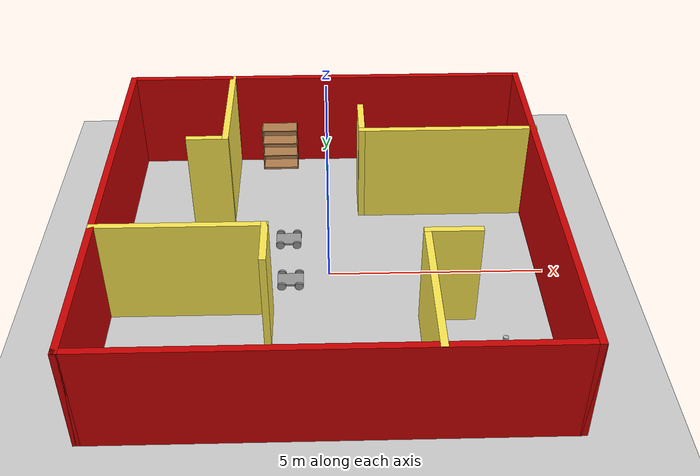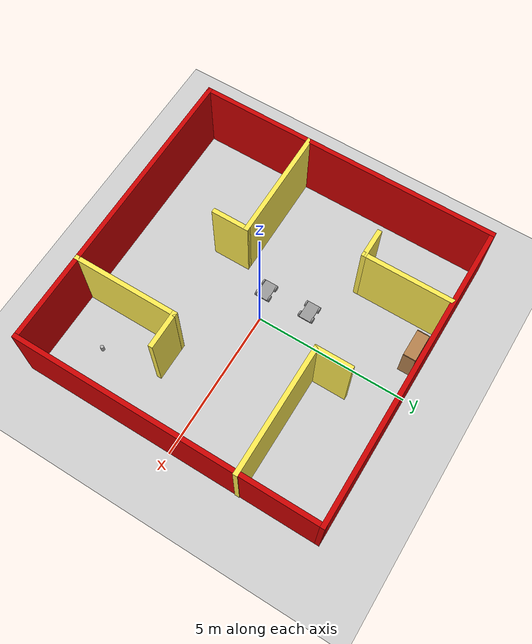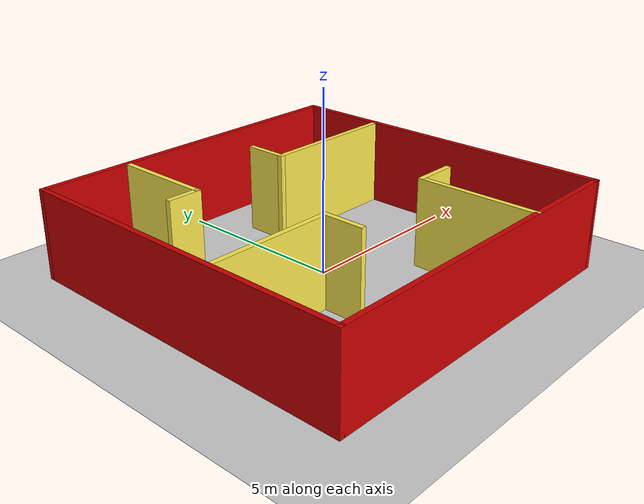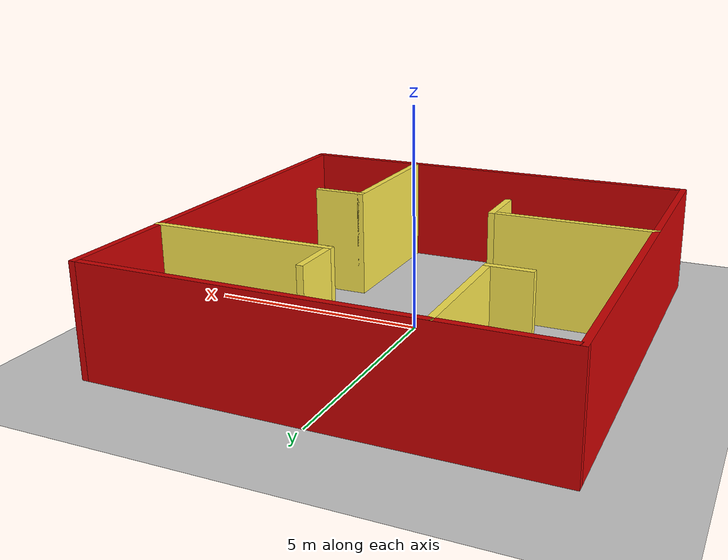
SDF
<sdf version="1.7">
 <world name="default">
  <plugin name="Welcom" filename="libWelcom.so"/>
  <light name="sun" type="directional">
   <pose>0 0 10 0 -0 0</pose>
   <diffuse>0.8 0.8 0.8 1</diffuse>
   <specular>0.2 0.2 0.2 1</specular>
   <attenuation>
    <range>1000</range>
    <constant>0.9</constant>
    <linear>0.01</linear>
    <quadratic>0.001</quadratic>
   </attenuation>
   <direction>-0.5 0.1 -0.9</direction>
   <spot><inner_angle>0</inner_angle><outer_angle>0</outer_angle><falloff>0</falloff></spot>
  </light>
  <model name="ground_plane">
   <static>1</static>
   <link name="link">
    <collision name="collision">
     <geometry><plane><normal>0 0 1</normal><size>100 100</size></plane></geometry>
     <surface>
      <contact><collide_bitmask>65535</collide_bitmask></contact>
      <friction><ode><mu>100</mu><mu2>50</mu2></ode></friction>
     </surface>
    </collision>
    <visual name="visual">
     <cast_shadows>0</cast_shadows>
     <geometry><plane><normal>0 0 1</normal><size>100 100</size></plane></geometry>
     <material>
      <script><uri>file://media/materials/scripts/gazebo.material</uri><name>Gazebo/Grey</name></script>
     </material>
    </visual>
   </link>
  </model>
  <gravity>0 0 -9.8</gravity>
  <magnetic_field>6e-06 2.3e-05 -4.2e-05</magnetic_field>
  <atmosphere type="adiabatic"/>
  <physics type="ode">
   <max_step_size>0.001</max_step_size>
   <real_time_factor>1</real_time_factor>
   <real_time_update_rate>1000</real_time_update_rate>
  </physics>
  <scene><ambient>0.4 0.4 0.4 1</ambient><background>0.7 0.7 0.7 1</background><shadows>1</shadows></scene>
  <spherical_coordinates>
   <surface_model>EARTH_WGS84</surface_model>
   <latitude_deg>0</latitude_deg>
   <longitude_deg>0</longitude_deg>
   <elevation>0</elevation>
   <heading_deg>0</heading_deg>
  </spherical_coordinates>
  <model name="robot1">
   <link name="link_0">
    <inertial>
     <mass>1</mass>
     <inertia>
      <ixx>0.166667</ixx>
      <ixy>0</ixy>
      <ixz>0</ixz>
      <iyy>0.166667</iyy>
      <iyz>0</iyz>
      <izz>0.166667</izz>
     </inertia>
    </inertial>
    <pose>-0.36 -0.4 -0.36 0 -0 0</pose>
    <visual name="visual">
     <geometry><box><size>0.6 0.4 0.05</size></box></geometry>
     <material>
      <lighting>1</lighting>
      <script><uri>file://media/materials/scripts/gazebo.material</uri><name>Gazebo/Grey</name></script>
      <shader type="pixel"><normal_map>__default__</normal_map></shader>
      <ambient>0.3 0.3 0.3 1</ambient>
      <diffuse>0.7 0.7 0.7 1</diffuse>
      <specular>0.01 0.01 0.01 1</specular>
      <emissive>0 0 0 1</emissive>
     </material>
    </visual>
    <collision name="collision">
     <geometry><box><size>0.6 0.4 0.05</size></box></geometry>
     <surface>
      <friction>
       <ode><mu>1</mu><mu2>1</mu2><fdir1>0 0 0</fdir1><slip1>0</slip1><slip2>0</slip2></ode>
       <torsional>
        <coefficient>1</coefficient>
        <patch_radius>0</patch_radius>
        <surface_radius>0</surface_radius>
        <use_patch_radius>1</use_patch_radius>
        <ode><slip>0</slip></ode>
       </torsional>
      </friction>
      <bounce><restitution_coefficient>0</restitution_coefficient><threshold>1e+06</threshold></bounce>
      <contact>
       <collide_without_contact>0</collide_without_contact>
       <collide_without_contact_bitmask>1</collide_without_contact_bitmask>
       <collide_bitmask>1</collide_bitmask>
       <ode>
        <soft_cfm>0</soft_cfm>
        <soft_erp>0.2</soft_erp>
        <kp>1e+13</kp>
        <kd>1</kd>
        <max_vel>0.01</max_vel>
        <min_depth>0</min_depth>
       </ode>
       <bullet>
        <split_impulse>1</split_impulse>
        <split_impulse_penetration_threshold>-0.01</split_impulse_penetration_threshold>
        <soft_cfm>0</soft_cfm>
        <soft_erp>0.2</soft_erp>
        <kp>1e+13</kp>
        <kd>1</kd>
       </bullet>
      </contact>
     </surface>
    </collision>
   </link>
   <link name="link_1">
    <inertial>
     <mass>1</mass>
     <inertia><ixx>0.145833</ixx><ixy>0</ixy><ixz>0</ixz><iyy>0.145833</iyy><iyz>0</iyz><izz>0.125</izz></inertia>
    </inertial>
    <pose>-0.56 -0.625 -0.36 1.57 -0 0</pose>
    <visual name="visual">
     <geometry><cylinder><radius>0.1</radius><length>0.05</length></cylinder></geometry>
     <material>
      <lighting>1</lighting>
      <script><uri>file://media/materials/scripts/gazebo.material</uri><name>Gazebo/Grey</name></script>
      <shader type="pixel"><normal_map>__default__</normal_map></shader>
      <ambient>0.3 0.3 0.3 1</ambient>
      <diffuse>0.7 0.7 0.7 1</diffuse>
      <specular>0.01 0.01 0.01 1</specular>
      <emissive>0 0 0 1</emissive>
     </material>
    </visual>
    <collision name="collision">
     <geometry><cylinder><radius>0.1</radius><length>0.05</length></cylinder></geometry>
     <surface>
      <friction>
       <ode><mu>1</mu><mu2>1</mu2><fdir1>0 0 0</fdir1><slip1>0</slip1><slip2>0</slip2></ode>
       <torsional>
        <coefficient>1</coefficient>
        <patch_radius>0</patch_radius>
        <surface_radius>0</surface_radius>
        <use_patch_radius>1</use_patch_radius>
        <ode><slip>0</slip></ode>
       </torsional>
      </friction>
      <bounce><restitution_coefficient>0</restitution_coefficient><threshold>1e+06</threshold></bounce>
      <contact>
       <collide_without_contact>0</collide_without_contact>
       <collide_without_contact_bitmask>1</collide_without_contact_bitmask>
       <collide_bitmask>1</collide_bitmask>
       <ode>
        <soft_cfm>0</soft_cfm>
        <soft_erp>0.2</soft_erp>
        <kp>1e+13</kp>
        <kd>1</kd>
        <max_vel>0.01</max_vel>
        <min_depth>0</min_depth>
       </ode>
       <bullet>
        <split_impulse>1</split_impulse>
        <split_impulse_penetration_threshold>-0.01</split_impulse_penetration_threshold>
        <soft_cfm>0</soft_cfm>
        <soft_erp>0.2</soft_erp>
        <kp>1e+13</kp>
        <kd>1</kd>
       </bullet>
      </contact>
     </surface>
    </collision>
   </link>
   <link name="link_1_clone">
    <inertial>
     <mass>1</mass>
     <inertia><ixx>0.145833</ixx><ixy>0</ixy><ixz>0</ixz><iyy>0.145833</iyy><iyz>0</iyz><izz>0.125</izz></inertia>
    </inertial>
    <pose>-0.16 -0.17492 -0.36 1.57 -0 0</pose>
    <visual name="visual">
     <geometry><cylinder><radius>0.1</radius><length>0.05</length></cylinder></geometry>
     <material>
      <lighting>1</lighting>
      <script><uri>file://media/materials/scripts/gazebo.material</uri><name>Gazebo/Grey</name></script>
      <shader type="pixel"><normal_map>__default__</normal_map></shader>
      <ambient>0.3 0.3 0.3 1</ambient>
      <diffuse>0.7 0.7 0.7 1</diffuse>
      <specular>0.01 0.01 0.01 1</specular>
      <emissive>0 0 0 1</emissive>
     </material>
    </visual>
    <collision name="collision">
     <geometry><cylinder><radius>0.1</radius><length>0.05</length></cylinder></geometry>
     <surface>
      <friction>
       <ode><mu>1</mu><mu2>1</mu2><fdir1>0 0 0</fdir1><slip1>0</slip1><slip2>0</slip2></ode>
       <torsional>
        <coefficient>1</coefficient>
        <patch_radius>0</patch_radius>
        <surface_radius>0</surface_radius>
        <use_patch_radius>1</use_patch_radius>
        <ode><slip>0</slip></ode>
       </torsional>
      </friction>
      <bounce><restitution_coefficient>0</restitution_coefficient><threshold>1e+06</threshold></bounce>
      <contact>
       <collide_without_contact>0</collide_without_contact>
       <collide_without_contact_bitmask>1</collide_without_contact_bitmask>
       <collide_bitmask>1</collide_bitmask>
       <ode>
        <soft_cfm>0</soft_cfm>
        <soft_erp>0.2</soft_erp>
        <kp>1e+13</kp>
        <kd>1</kd>
        <max_vel>0.01</max_vel>
        <min_depth>0</min_depth>
       </ode>
       <bullet>
        <split_impulse>1</split_impulse>
        <split_impulse_penetration_threshold>-0.01</split_impulse_penetration_threshold>
        <soft_cfm>0</soft_cfm>
        <soft_erp>0.2</soft_erp>
        <kp>1e+13</kp>
        <kd>1</kd>
       </bullet>
      </contact>
     </surface>
    </collision>
   </link>
   <link name="link_1_clone_0">
    <inertial>
     <mass>1</mass>
     <inertia><ixx>0.145833</ixx><ixy>0</ixy><ixz>0</ixz><iyy>0.145833</iyy><iyz>0</iyz><izz>0.125</izz></inertia>
    </inertial>
    <pose>-0.16 -0.625 -0.36 1.57 -0 0</pose>
    <visual name="visual">
     <geometry><cylinder><radius>0.1</radius><length>0.05</length></cylinder></geometry>
     <material>
      <lighting>1</lighting>
      <script><uri>file://media/materials/scripts/gazebo.material</uri><name>Gazebo/Grey</name></script>
      <shader type="pixel"><normal_map>__default__</normal_map></shader>
      <ambient>0.3 0.3 0.3 1</ambient>
      <diffuse>0.7 0.7 0.7 1</diffuse>
      <specular>0.01 0.01 0.01 1</specular>
      <emissive>0 0 0 1</emissive>
     </material>
    </visual>
    <collision name="collision">
     <geometry><cylinder><radius>0.1</radius><length>0.05</length></cylinder></geometry>
     <surface>
      <friction>
       <ode><mu>1</mu><mu2>1</mu2><fdir1>0 0 0</fdir1><slip1>0</slip1><slip2>0</slip2></ode>
       <torsional>
        <coefficient>1</coefficient>
        <patch_radius>0</patch_radius>
        <surface_radius>0</surface_radius>
        <use_patch_radius>1</use_patch_radius>
        <ode><slip>0</slip></ode>
       </torsional>
      </friction>
      <bounce><restitution_coefficient>0</restitution_coefficient><threshold>1e+06</threshold></bounce>
      <contact>
       <collide_without_contact>0</collide_without_contact>
       <collide_without_contact_bitmask>1</collide_without_contact_bitmask>
       <collide_bitmask>1</collide_bitmask>
       <ode>
        <soft_cfm>0</soft_cfm>
        <soft_erp>0.2</soft_erp>
        <kp>1e+13</kp>
        <kd>1</kd>
        <max_vel>0.01</max_vel>
        <min_depth>0</min_depth>
       </ode>
       <bullet>
        <split_impulse>1</split_impulse>
        <split_impulse_penetration_threshold>-0.01</split_impulse_penetration_threshold>
        <soft_cfm>0</soft_cfm>
        <soft_erp>0.2</soft_erp>
        <kp>1e+13</kp>
        <kd>1</kd>
       </bullet>
      </contact>
     </surface>
    </collision>
   </link>
   <link name="link_1_clone_1">
    <inertial>
     <mass>1</mass>
     <inertia><ixx>0.145833</ixx><ixy>0</ixy><ixz>0</ixz><iyy>0.145833</iyy><iyz>0</iyz><izz>0.125</izz></inertia>
    </inertial>
    <pose>-0.56 -0.175 -0.36 1.57 -0 0</pose>
    <visual name="visual">
     <geometry><cylinder><radius>0.1</radius><length>0.05</length></cylinder></geometry>
     <material>
      <lighting>1</lighting>
      <script><uri>file://media/materials/scripts/gazebo.material</uri><name>Gazebo/Grey</name></script>
      <shader type="pixel"><normal_map>__default__</normal_map></shader>
      <ambient>0.3 0.3 0.3 1</ambient>
      <diffuse>0.7 0.7 0.7 1</diffuse>
      <specular>0.01 0.01 0.01 1</specular>
      <emissive>0 0 0 1</emissive>
     </material>
    </visual>
    <collision name="collision">
     <geometry><cylinder><radius>0.1</radius><length>0.05</length></cylinder></geometry>
     <surface>
      <friction>
       <ode><mu>1</mu><mu2>1</mu2><fdir1>0 0 0</fdir1><slip1>0</slip1><slip2>0</slip2></ode>
       <torsional>
        <coefficient>1</coefficient>
        <patch_radius>0</patch_radius>
        <surface_radius>0</surface_radius>
        <use_patch_radius>1</use_patch_radius>
        <ode><slip>0</slip></ode>
       </torsional>
      </friction>
      <bounce><restitution_coefficient>0</restitution_coefficient><threshold>1e+06</threshold></bounce>
      <contact>
       <collide_without_contact>0</collide_without_contact>
       <collide_without_contact_bitmask>1</collide_without_contact_bitmask>
       <collide_bitmask>1</collide_bitmask>
       <ode>
        <soft_cfm>0</soft_cfm>
        <soft_erp>0.2</soft_erp>
        <kp>1e+13</kp>
        <kd>1</kd>
        <max_vel>0.01</max_vel>
        <min_depth>0</min_depth>
       </ode>
       <bullet>
        <split_impulse>1</split_impulse>
        <split_impulse_penetration_threshold>-0.01</split_impulse_penetration_threshold>
        <soft_cfm>0</soft_cfm>
        <soft_erp>0.2</soft_erp>
        <kp>1e+13</kp>
        <kd>1</kd>
       </bullet>
      </contact>
     </surface>
    </collision>
   </link>
   <joint name="link_0_JOINT_0" type="revolute">
    <parent>link_0</parent>
    <child>link_1_clone</child>
    <axis>
     <xyz>1 -0.04 0</xyz>
     <limit>
      <lower>-1.79769e+308</lower>
      <upper>1.79769e+308</upper>
      <effort>-1</effort>
      <velocity>-1</velocity>
     </limit>
     <dynamics>
      <spring_reference>0</spring_reference>
      <spring_stiffness>0</spring_stiffness>
      <damping>0</damping>
     </dynamics>
    </axis>
    <physics>
     <ode><limit><cfm>0</cfm><erp>0.2</erp></limit><suspension><cfm>0</cfm><erp>0.2</erp></suspension></ode>
    </physics>
   </joint>
   <joint name="link_0_JOINT_1" type="revolute">
    <parent>link_0</parent>
    <child>link_1_clone_1</child>
    <axis>
     <xyz>1 0 0</xyz>
     <limit>
      <lower>-1.79769e+308</lower>
      <upper>1.79769e+308</upper>
      <effort>-1</effort>
      <velocity>-1</velocity>
     </limit>
     <dynamics>
      <spring_reference>0</spring_reference>
      <spring_stiffness>0</spring_stiffness>
      <damping>0</damping>
     </dynamics>
    </axis>
    <physics>
     <ode><limit><cfm>0</cfm><erp>0.2</erp></limit><suspension><cfm>0</cfm><erp>0.2</erp></suspension></ode>
    </physics>
   </joint>
   <joint name="link_0_JOINT_2" type="revolute">
    <parent>link_0</parent>
    <child>link_1_clone_0</child>
    <axis>
     <xyz>1 0.05 0</xyz>
     <limit>
      <lower>-1.79769e+308</lower>
      <upper>1.79769e+308</upper>
      <effort>-1</effort>
      <velocity>-1</velocity>
     </limit>
     <dynamics>
      <spring_reference>0</spring_reference>
      <spring_stiffness>0</spring_stiffness>
      <damping>0</damping>
     </dynamics>
    </axis>
    <physics>
     <ode><limit><cfm>0</cfm><erp>0.2</erp></limit><suspension><cfm>0</cfm><erp>0.2</erp></suspension></ode>
    </physics>
   </joint>
   <joint name="link_0_JOINT_3" type="revolute">
    <parent>link_0</parent>
    <child>link_1</child>
    <axis>
     <xyz>1 0 0</xyz>
     <limit>
      <lower>-1.79769e+308</lower>
      <upper>1.79769e+308</upper>
      <effort>-1</effort>
      <velocity>-1</velocity>
     </limit>
     <dynamics>
      <spring_reference>0</spring_reference>
      <spring_stiffness>0</spring_stiffness>
      <damping>0</damping>
     </dynamics>
    </axis>
    <physics>
     <ode><limit><cfm>0</cfm><erp>0.2</erp></limit><suspension><cfm>0</cfm><erp>0.2</erp></suspension></ode>
    </physics>
   </joint>
   <static>0</static>
   <pose>-0.607321 1.60471 0.460003 1.2e-05 -3e-06 -0.000134</pose>
  </model>
  <model name="robot2">
   <link name="link_0">
    <inertial>
     <mass>1</mass>
     <inertia>
      <ixx>0.166667</ixx>
      <ixy>0</ixy>
      <ixz>0</ixz>
      <iyy>0.166667</iyy>
      <iyz>0</iyz>
      <izz>0.166667</izz>
     </inertia>
    </inertial>
    <pose>-0.36 -0.4 -0.36 0 -0 0</pose>
    <visual name="visual">
     <geometry><box><size>0.6 0.4 0.05</size></box></geometry>
     <material>
      <lighting>1</lighting>
      <script><uri>file://media/materials/scripts/gazebo.material</uri><name>Gazebo/Grey</name></script>
      <shader type="pixel"><normal_map>__default__</normal_map></shader>
      <ambient>0.3 0.3 0.3 1</ambient>
      <diffuse>0.7 0.7 0.7 1</diffuse>
      <specular>0.01 0.01 0.01 1</specular>
      <emissive>0 0 0 1</emissive>
     </material>
    </visual>
    <collision name="collision">
     <geometry><box><size>0.6 0.4 0.05</size></box></geometry>
     <surface>
      <friction>
       <ode><mu>1</mu><mu2>1</mu2><fdir1>0 0 0</fdir1><slip1>0</slip1><slip2>0</slip2></ode>
       <torsional>
        <coefficient>1</coefficient>
        <patch_radius>0</patch_radius>
        <surface_radius>0</surface_radius>
        <use_patch_radius>1</use_patch_radius>
        <ode><slip>0</slip></ode>
       </torsional>
      </friction>
      <bounce><restitution_coefficient>0</restitution_coefficient><threshold>1e+06</threshold></bounce>
      <contact>
       <collide_without_contact>0</collide_without_contact>
       <collide_without_contact_bitmask>1</collide_without_contact_bitmask>
       <collide_bitmask>1</collide_bitmask>
       <ode>
        <soft_cfm>0</soft_cfm>
        <soft_erp>0.2</soft_erp>
        <kp>1e+13</kp>
        <kd>1</kd>
        <max_vel>0.01</max_vel>
        <min_depth>0</min_depth>
       </ode>
       <bullet>
        <split_impulse>1</split_impulse>
        <split_impulse_penetration_threshold>-0.01</split_impulse_penetration_threshold>
        <soft_cfm>0</soft_cfm>
        <soft_erp>0.2</soft_erp>
        <kp>1e+13</kp>
        <kd>1</kd>
       </bullet>
      </contact>
     </surface>
    </collision>
   </link>
   <link name="link_1">
    <inertial>
     <mass>1</mass>
     <inertia><ixx>0.145833</ixx><ixy>0</ixy><ixz>0</ixz><iyy>0.145833</iyy><iyz>0</iyz><izz>0.125</izz></inertia>
    </inertial>
    <pose>-0.56 -0.625 -0.36 1.57 -0 0</pose>
    <visual name="visual">
     <geometry><cylinder><radius>0.1</radius><length>0.05</length></cylinder></geometry>
     <material>
      <lighting>1</lighting>
      <script><uri>file://media/materials/scripts/gazebo.material</uri><name>Gazebo/Grey</name></script>
      <shader type="pixel"><normal_map>__default__</normal_map></shader>
      <ambient>0.3 0.3 0.3 1</ambient>
      <diffuse>0.7 0.7 0.7 1</diffuse>
      <specular>0.01 0.01 0.01 1</specular>
      <emissive>0 0 0 1</emissive>
     </material>
    </visual>
    <collision name="collision">
     <geometry><cylinder><radius>0.1</radius><length>0.05</length></cylinder></geometry>
     <surface>
      <friction>
       <ode><mu>1</mu><mu2>1</mu2><fdir1>0 0 0</fdir1><slip1>0</slip1><slip2>0</slip2></ode>
       <torsional>
        <coefficient>1</coefficient>
        <patch_radius>0</patch_radius>
        <surface_radius>0</surface_radius>
        <use_patch_radius>1</use_patch_radius>
        <ode><slip>0</slip></ode>
       </torsional>
      </friction>
      <bounce><restitution_coefficient>0</restitution_coefficient><threshold>1e+06</threshold></bounce>
      <contact>
       <collide_without_contact>0</collide_without_contact>
       <collide_without_contact_bitmask>1</collide_without_contact_bitmask>
       <collide_bitmask>1</collide_bitmask>
       <ode>
        <soft_cfm>0</soft_cfm>
        <soft_erp>0.2</soft_erp>
        <kp>1e+13</kp>
        <kd>1</kd>
        <max_vel>0.01</max_vel>
        <min_depth>0</min_depth>
       </ode>
       <bullet>
        <split_impulse>1</split_impulse>
        <split_impulse_penetration_threshold>-0.01</split_impulse_penetration_threshold>
        <soft_cfm>0</soft_cfm>
        <soft_erp>0.2</soft_erp>
        <kp>1e+13</kp>
        <kd>1</kd>
       </bullet>
      </contact>
     </surface>
    </collision>
   </link>
   <link name="link_1_clone">
    <inertial>
     <mass>1</mass>
     <inertia><ixx>0.145833</ixx><ixy>0</ixy><ixz>0</ixz><iyy>0.145833</iyy><iyz>0</iyz><izz>0.125</izz></inertia>
    </inertial>
    <pose>-0.16 -0.17492 -0.36 1.57 -0 0</pose>
    <visual name="visual">
     <geometry><cylinder><radius>0.1</radius><length>0.05</length></cylinder></geometry>
     <material>
      <lighting>1</lighting>
      <script><uri>file://media/materials/scripts/gazebo.material</uri><name>Gazebo/Grey</name></script>
      <shader type="pixel"><normal_map>__default__</normal_map></shader>
      <ambient>0.3 0.3 0.3 1</ambient>
      <diffuse>0.7 0.7 0.7 1</diffuse>
      <specular>0.01 0.01 0.01 1</specular>
      <emissive>0 0 0 1</emissive>
     </material>
    </visual>
    <collision name="collision">
     <geometry><cylinder><radius>0.1</radius><length>0.05</length></cylinder></geometry>
     <surface>
      <friction>
       <ode><mu>1</mu><mu2>1</mu2><fdir1>0 0 0</fdir1><slip1>0</slip1><slip2>0</slip2></ode>
       <torsional>
        <coefficient>1</coefficient>
        <patch_radius>0</patch_radius>
        <surface_radius>0</surface_radius>
        <use_patch_radius>1</use_patch_radius>
        <ode><slip>0</slip></ode>
       </torsional>
      </friction>
      <bounce><restitution_coefficient>0</restitution_coefficient><threshold>1e+06</threshold></bounce>
      <contact>
       <collide_without_contact>0</collide_without_contact>
       <collide_without_contact_bitmask>1</collide_without_contact_bitmask>
       <collide_bitmask>1</collide_bitmask>
       <ode>
        <soft_cfm>0</soft_cfm>
        <soft_erp>0.2</soft_erp>
        <kp>1e+13</kp>
        <kd>1</kd>
        <max_vel>0.01</max_vel>
        <min_depth>0</min_depth>
       </ode>
       <bullet>
        <split_impulse>1</split_impulse>
        <split_impulse_penetration_threshold>-0.01</split_impulse_penetration_threshold>
        <soft_cfm>0</soft_cfm>
        <soft_erp>0.2</soft_erp>
        <kp>1e+13</kp>
        <kd>1</kd>
       </bullet>
      </contact>
     </surface>
    </collision>
   </link>
   <link name="link_1_clone_0">
    <inertial>
     <mass>1</mass>
     <inertia><ixx>0.145833</ixx><ixy>0</ixy><ixz>0</ixz><iyy>0.145833</iyy><iyz>0</iyz><izz>0.125</izz></inertia>
    </inertial>
    <pose>-0.16 -0.625 -0.36 1.57 -0 0</pose>
    <visual name="visual">
     <geometry><cylinder><radius>0.1</radius><length>0.05</length></cylinder></geometry>
     <material>
      <lighting>1</lighting>
      <script><uri>file://media/materials/scripts/gazebo.material</uri><name>Gazebo/Grey</name></script>
      <shader type="pixel"><normal_map>__default__</normal_map></shader>
      <ambient>0.3 0.3 0.3 1</ambient>
      <diffuse>0.7 0.7 0.7 1</diffuse>
      <specular>0.01 0.01 0.01 1</specular>
      <emissive>0 0 0 1</emissive>
     </material>
    </visual>
    <collision name="collision">
     <geometry><cylinder><radius>0.1</radius><length>0.05</length></cylinder></geometry>
     <surface>
      <friction>
       <ode><mu>1</mu><mu2>1</mu2><fdir1>0 0 0</fdir1><slip1>0</slip1><slip2>0</slip2></ode>
       <torsional>
        <coefficient>1</coefficient>
        <patch_radius>0</patch_radius>
        <surface_radius>0</surface_radius>
        <use_patch_radius>1</use_patch_radius>
        <ode><slip>0</slip></ode>
       </torsional>
      </friction>
      <bounce><restitution_coefficient>0</restitution_coefficient><threshold>1e+06</threshold></bounce>
      <contact>
       <collide_without_contact>0</collide_without_contact>
       <collide_without_contact_bitmask>1</collide_without_contact_bitmask>
       <collide_bitmask>1</collide_bitmask>
       <ode>
        <soft_cfm>0</soft_cfm>
        <soft_erp>0.2</soft_erp>
        <kp>1e+13</kp>
        <kd>1</kd>
        <max_vel>0.01</max_vel>
        <min_depth>0</min_depth>
       </ode>
       <bullet>
        <split_impulse>1</split_impulse>
        <split_impulse_penetration_threshold>-0.01</split_impulse_penetration_threshold>
        <soft_cfm>0</soft_cfm>
        <soft_erp>0.2</soft_erp>
        <kp>1e+13</kp>
        <kd>1</kd>
       </bullet>
      </contact>
     </surface>
    </collision>
   </link>
   <link name="link_1_clone_1">
    <inertial>
     <mass>1</mass>
     <inertia><ixx>0.145833</ixx><ixy>0</ixy><ixz>0</ixz><iyy>0.145833</iyy><iyz>0</iyz><izz>0.125</izz></inertia>
    </inertial>
    <pose>-0.56 -0.175 -0.36 1.57 -0 0</pose>
    <visual name="visual">
     <geometry><cylinder><radius>0.1</radius><length>0.05</length></cylinder></geometry>
     <material>
      <lighting>1</lighting>
      <script><uri>file://media/materials/scripts/gazebo.material</uri><name>Gazebo/Grey</name></script>
      <shader type="pixel"><normal_map>__default__</normal_map></shader>
      <ambient>0.3 0.3 0.3 1</ambient>
      <diffuse>0.7 0.7 0.7 1</diffuse>
      <specular>0.01 0.01 0.01 1</specular>
      <emissive>0 0 0 1</emissive>
     </material>
    </visual>
    <collision name="collision">
     <geometry><cylinder><radius>0.1</radius><length>0.05</length></cylinder></geometry>
     <surface>
      <friction>
       <ode><mu>1</mu><mu2>1</mu2><fdir1>0 0 0</fdir1><slip1>0</slip1><slip2>0</slip2></ode>
       <torsional>
        <coefficient>1</coefficient>
        <patch_radius>0</patch_radius>
        <surface_radius>0</surface_radius>
        <use_patch_radius>1</use_patch_radius>
        <ode><slip>0</slip></ode>
       </torsional>
      </friction>
      <bounce><restitution_coefficient>0</restitution_coefficient><threshold>1e+06</threshold></bounce>
      <contact>
       <collide_without_contact>0</collide_without_contact>
       <collide_without_contact_bitmask>1</collide_without_contact_bitmask>
       <collide_bitmask>1</collide_bitmask>
       <ode>
        <soft_cfm>0</soft_cfm>
        <soft_erp>0.2</soft_erp>
        <kp>1e+13</kp>
        <kd>1</kd>
        <max_vel>0.01</max_vel>
        <min_depth>0</min_depth>
       </ode>
       <bullet>
        <split_impulse>1</split_impulse>
        <split_impulse_penetration_threshold>-0.01</split_impulse_penetration_threshold>
        <soft_cfm>0</soft_cfm>
        <soft_erp>0.2</soft_erp>
        <kp>1e+13</kp>
        <kd>1</kd>
       </bullet>
      </contact>
     </surface>
    </collision>
   </link>
   <joint name="link_0_JOINT_0" type="revolute">
    <parent>link_0</parent>
    <child>link_1_clone</child>
    <axis>
     <xyz>1 -0.04 0</xyz>
     <limit>
      <lower>-1.79769e+308</lower>
      <upper>1.79769e+308</upper>
      <effort>-1</effort>
      <velocity>-1</velocity>
     </limit>
     <dynamics>
      <spring_reference>0</spring_reference>
      <spring_stiffness>0</spring_stiffness>
      <damping>0</damping>
     </dynamics>
    </axis>
    <physics>
     <ode><limit><cfm>0</cfm><erp>0.2</erp></limit><suspension><cfm>0</cfm><erp>0.2</erp></suspension></ode>
    </physics>
   </joint>
   <joint name="link_0_JOINT_1" type="revolute">
    <parent>link_0</parent>
    <child>link_1_clone_1</child>
    <axis>
     <xyz>1 0 0</xyz>
     <limit>
      <lower>-1.79769e+308</lower>
      <upper>1.79769e+308</upper>
      <effort>-1</effort>
      <velocity>-1</velocity>
     </limit>
     <dynamics>
      <spring_reference>0</spring_reference>
      <spring_stiffness>0</spring_stiffness>
      <damping>0</damping>
     </dynamics>
    </axis>
    <physics>
     <ode><limit><cfm>0</cfm><erp>0.2</erp></limit><suspension><cfm>0</cfm><erp>0.2</erp></suspension></ode>
    </physics>
   </joint>
   <joint name="link_0_JOINT_2" type="revolute">
    <parent>link_0</parent>
    <child>link_1_clone_0</child>
    <axis>
     <xyz>1 0.05 0</xyz>
     <limit>
      <lower>-1.79769e+308</lower>
      <upper>1.79769e+308</upper>
      <effort>-1</effort>
      <velocity>-1</velocity>
     </limit>
     <dynamics>
      <spring_reference>0</spring_reference>
      <spring_stiffness>0</spring_stiffness>
      <damping>0</damping>
     </dynamics>
    </axis>
    <physics>
     <ode><limit><cfm>0</cfm><erp>0.2</erp></limit><suspension><cfm>0</cfm><erp>0.2</erp></suspension></ode>
    </physics>
   </joint>
   <joint name="link_0_JOINT_3" type="revolute">
    <parent>link_0</parent>
    <child>link_1</child>
    <axis>
     <xyz>1 0 0</xyz>
     <limit>
      <lower>-1.79769e+308</lower>
      <upper>1.79769e+308</upper>
      <effort>-1</effort>
      <velocity>-1</velocity>
     </limit>
     <dynamics>
      <spring_reference>0</spring_reference>
      <spring_stiffness>0</spring_stiffness>
      <damping>0</damping>
     </dynamics>
    </axis>
    <physics>
     <ode><limit><cfm>0</cfm><erp>0.2</erp></limit><suspension><cfm>0</cfm><erp>0.2</erp></suspension></ode>
    </physics>
   </joint>
   <static>0</static>
   <pose>-0.536483 0.095181 0.459998 1e-06 -2e-06 0.00023</pose>
  </model>
  <model name="bookshelf">
   <static>1</static>
   <link name="link">
    <inertial><mass>1</mass></inertial>
    <collision name="back">
     <pose>0 0.005 0.6 0 -0 0</pose>
     <geometry><box><size>0.9 0.01 1.2</size></box></geometry>
    </collision>
    <visual name="visual1">
     <pose>0 0.005 0.6 0 -0 0</pose>
     <geometry><box><size>0.9 0.01 1.2</size></box></geometry>
     <material>
      <script><uri>file://media/materials/scripts/gazebo.material</uri><name>Gazebo/Wood</name></script>
     </material>
    </visual>
    <collision name="left_side">
     <pose>0.45 -0.195 0.6 0 -0 0</pose>
     <geometry><box><size>0.02 0.4 1.2</size></box></geometry>
    </collision>
    <visual name="visual2">
     <pose>0.45 -0.195 0.6 0 -0 0</pose>
     <geometry><box><size>0.02 0.4 1.2</size></box></geometry>
     <material>
      <script><uri>file://media/materials/scripts/gazebo.material</uri><name>Gazebo/Wood</name></script>
     </material>
    </visual>
    <collision name="right_side">
     <pose>-0.45 -0.195 0.6 0 -0 0</pose>
     <geometry><box><size>0.02 0.4 1.2</size></box></geometry>
    </collision>
    <visual name="visual3">
     <pose>-0.45 -0.195 0.6 0 -0 0</pose>
     <geometry><box><size>0.02 0.4 1.2</size></box></geometry>
     <material>
      <script><uri>file://media/materials/scripts/gazebo.material</uri><name>Gazebo/Wood</name></script>
     </material>
    </visual>
    <collision name="bottom">
     <pose>0 -0.195 0.03 0 -0 0</pose>
     <geometry><box><size>0.88 0.4 0.06</size></box></geometry>
    </collision>
    <visual name="visual4">
     <pose>0 -0.195 0.03 0 -0 0</pose>
     <geometry><box><size>0.88 0.4 0.06</size></box></geometry>
     <material>
      <script><uri>file://media/materials/scripts/gazebo.material</uri><name>Gazebo/Wood</name></script>
     </material>
    </visual>
    <collision name="top">
     <pose>0 -0.195 1.19 0 -0 0</pose>
     <geometry><box><size>0.88 0.4 0.02</size></box></geometry>
    </collision>
    <visual name="visual5">
     <pose>0 -0.195 1.19 0 -0 0</pose>
     <geometry><box><size>0.88 0.4 0.02</size></box></geometry>
     <material>
      <script><uri>file://media/materials/scripts/gazebo.material</uri><name>Gazebo/Wood</name></script>
     </material>
    </visual>
    <collision name="low_shelf">
     <pose>0 -0.195 0.43 0 -0 0</pose>
     <geometry><box><size>0.88 0.4 0.02</size></box></geometry>
    </collision>
    <visual name="visual6">
     <pose>0 -0.195 0.43 0 -0 0</pose>
     <geometry><box><size>0.88 0.4 0.02</size></box></geometry>
     <material>
      <script><uri>file://media/materials/scripts/gazebo.material</uri><name>Gazebo/Wood</name></script>
     </material>
    </visual>
    <collision name="high_shelf">
     <pose>0 -0.195 0.8 0 -0 0</pose>
     <geometry><box><size>0.88 0.4 0.02</size></box></geometry>
    </collision>
    <visual name="visual7">
     <pose>0 -0.195 0.8 0 -0 0</pose>
     <geometry><box><size>0.88 0.4 0.02</size></box></geometry>
     <material>
      <script><uri>file://media/materials/scripts/gazebo.material</uri><name>Gazebo/Wood</name></script>
     </material>
    </visual>
   </link>
   <pose>-1.2413 4.78541 0 0 -0 0</pose>
  </model>
  <model name="restaurant">
   <pose>-0.00628 0.00836 0 0 -0 0</pose>
   <link name="Wall_10">
    <collision name="Wall_10_Collision">
     <geometry><box><size>4.25 0.15 2.5</size></box></geometry>
     <pose>0 0 1.25 0 -0 0</pose>
    </collision>
    <visual name="Wall_10_Visual">
     <pose>0 0 1.25 0 -0 0</pose>
     <geometry><box><size>4.25 0.15 2.5</size></box></geometry>
     <material>
      <script><uri>file://media/materials/scripts/gazebo.material</uri><name>Gazebo/Grey</name></script>
      <ambient>0.988235 0.913725 0.309804 1</ambient>
     </material>
     <meta><layer>0</layer></meta>
    </visual>
    <pose>2.885 2.3265 0 0 -0 3.14159</pose>
   </link>
   <link name="Wall_11">
    <collision name="Wall_11_Collision">
     <geometry><box><size>1.25 0.15 2.5</size></box></geometry>
     <pose>0 0 1.25 0 -0 0</pose>
    </collision>
    <visual name="Wall_11_Visual">
     <pose>0 0 1.25 0 -0 0</pose>
     <geometry><box><size>1.25 0.15 2.5</size></box></geometry>
     <material>
      <script><uri>file://media/materials/scripts/gazebo.material</uri><name>Gazebo/Grey</name></script>
      <ambient>0.988235 0.913725 0.309804 1</ambient>
     </material>
     <meta><layer>0</layer></meta>
    </visual>
    <pose>0.835 2.8765 0 0 -0 1.5708</pose>
   </link>
   <link name="Wall_13">
    <collision name="Wall_13_Collision">
     <geometry><box><size>3 0.15 2.5</size></box></geometry>
     <pose>0 0 1.25 0 -0 0</pose>
    </collision>
    <visual name="Wall_13_Visual">
     <pose>0 0 1.25 0 -0 0</pose>
     <geometry><box><size>3 0.15 2.5</size></box></geometry>
     <material>
      <script><uri>file://media/materials/scripts/gazebo.material</uri><name>Gazebo/Grey</name></script>
      <ambient>0.988235 0.913725 0.309804 1</ambient>
     </material>
     <meta><layer>0</layer></meta>
    </visual>
    <pose>-2.3905 3.489 0 0 -0 -1.5708</pose>
   </link>
   <link name="Wall_16">
    <collision name="Wall_16_Collision">
     <geometry><box><size>3.5 0.15 2.5</size></box></geometry>
     <pose>0 0 1.25 0 -0 0</pose>
    </collision>
    <visual name="Wall_16_Visual">
     <pose>0 0 1.25 0 -0 0</pose>
     <geometry><box><size>3.5 0.15 2.5</size></box></geometry>
     <material>
      <script><uri>file://media/materials/scripts/gazebo.material</uri><name>Gazebo/Grey</name></script>
      <ambient>0.988235 0.913725 0.309804 1</ambient>
     </material>
     <meta><layer>0</layer></meta>
    </visual>
    <pose>2.0485 -3.2435 0 0 -0 1.5708</pose>
   </link>
   <link name="Wall_17">
    <collision name="Wall_17_Collision">
     <geometry><box><size>1.25 0.15 2.5</size></box></geometry>
     <pose>0 0 1.25 0 -0 0</pose>
    </collision>
    <visual name="Wall_17_Visual">
     <pose>0 0 1.25 0 -0 0</pose>
     <geometry><box><size>1.25 0.15 2.5</size></box></geometry>
     <material>
      <script><uri>file://media/materials/scripts/gazebo.material</uri><name>Gazebo/Grey</name></script>
      <ambient>0.988235 0.913725 0.309804 1</ambient>
     </material>
     <meta><layer>0</layer></meta>
    </visual>
    <pose>2.5985 -1.5685 0 0 -0 0</pose>
   </link>
   <link name="Wall_2">
    <collision name="Wall_2_Collision">
     <geometry><box><size>10 0.15 2.5</size></box></geometry>
     <pose>0 0 1.25 0 -0 0</pose>
    </collision>
    <visual name="Wall_2_Visual">
     <pose>0 0 1.25 0 -0 0</pose>
     <geometry><box><size>10 0.15 2.5</size></box></geometry>
     <material>
      <script><uri>file://media/materials/scripts/gazebo.material</uri><name>Gazebo/Grey</name></script>
      <ambient>0.8 0 0 1</ambient>
     </material>
     <meta><layer>0</layer></meta>
    </visual>
    <pose>-0.01 -4.925 0 0 -0 0</pose>
   </link>
   <link name="Wall_22">
    <collision name="Wall_22_Collision">
     <geometry><box><size>1.25 0.15 2.5</size></box></geometry>
     <pose>0 0 1.25 0 -0 0</pose>
    </collision>
    <visual name="Wall_22_Visual">
     <pose>0 0 1.25 0 -0 0</pose>
     <geometry><box><size>1.25 0.15 2.5</size></box></geometry>
     <material>
      <script><uri>file://media/materials/scripts/gazebo.material</uri><name>Gazebo/Grey</name></script>
      <ambient>0.988235 0.913725 0.309804 1</ambient>
     </material>
     <meta><layer>0</layer></meta>
    </visual>
    <pose>-1.332 -1.8345 0 0 -0 -1.5708</pose>
   </link>
   <link name="Wall_28">
    <collision name="Wall_28_Collision">
     <geometry><box><size>1 0.15 2.5</size></box></geometry>
     <pose>0 0 1.25 0 -0 0</pose>
    </collision>
    <visual name="Wall_28_Visual">
     <pose>0 0 1.25 0 -0 0</pose>
     <geometry><box><size>1 0.15 2.5</size></box></geometry>
     <material>
      <script><uri>file://media/materials/scripts/gazebo.material</uri><name>Gazebo/Grey</name></script>
      <ambient>0.988235 0.913725 0.309804 1</ambient>
     </material>
     <meta><layer>0</layer></meta>
    </visual>
    <pose>-2.8155 2.064 0 0 -0 3.14159</pose>
   </link>
   <link name="Wall_3">
    <collision name="Wall_3_Collision">
     <geometry><box><size>10 0.15 2.5</size></box></geometry>
     <pose>0 0 1.25 0 -0 0</pose>
    </collision>
    <visual name="Wall_3_Visual">
     <pose>0 0 1.25 0 -0 0</pose>
     <geometry><box><size>10 0.15 2.5</size></box></geometry>
     <material>
      <script><uri>file://media/materials/scripts/gazebo.material</uri><name>Gazebo/Grey</name></script>
      <ambient>0.8 0 0 1</ambient>
     </material>
     <meta><layer>0</layer></meta>
    </visual>
    <pose>4.915 -0 0 0 -0 1.5708</pose>
   </link>
   <link name="Wall_4">
    <collision name="Wall_4_Collision">
     <geometry><box><size>10 0.15 2.5</size></box></geometry>
     <pose>0 0 1.25 0 -0 0</pose>
    </collision>
    <visual name="Wall_4_Visual">
     <pose>0 0 1.25 0 -0 0</pose>
     <geometry><box><size>10 0.15 2.5</size></box></geometry>
     <material>
      <script><uri>file://media/materials/scripts/gazebo.material</uri><name>Gazebo/Grey</name></script>
      <ambient>0.8 0 0 1</ambient>
     </material>
     <meta><layer>0</layer></meta>
    </visual>
    <pose>-0.01 4.925 0 0 -0 3.14159</pose>
   </link>
   <link name="Wall_5">
    <collision name="Wall_5_Collision">
     <geometry><box><size>10 0.15 2.5</size></box></geometry>
     <pose>0 0 1.25 0 -0 0</pose>
    </collision>
    <visual name="Wall_5_Visual">
     <pose>0 0 1.25 0 -0 0</pose>
     <geometry><box><size>10 0.15 2.5</size></box></geometry>
     <material>
      <script><uri>file://media/materials/scripts/gazebo.material</uri><name>Gazebo/Grey</name></script>
      <ambient>0.8 0 0 1</ambient>
     </material>
     <meta><layer>0</layer></meta>
    </visual>
    <pose>-4.935 -0 0 0 -0 -1.5708</pose>
   </link>
   <link name="Wall_7">
    <collision name="Wall_7_Collision">
     <geometry><box><size>3.75 0.15 2.5</size></box></geometry>
     <pose>0 0 1.25 0 -0 0</pose>
    </collision>
    <visual name="Wall_7_Visual">
     <pose>0 0 1.25 0 -0 0</pose>
     <geometry><box><size>3.75 0.15 2.5</size></box></geometry>
     <material>
      <script><uri>file://media/materials/scripts/gazebo.material</uri><name>Gazebo/Grey</name></script>
      <ambient>0.988235 0.913725 0.309804 1</ambient>
     </material>
     <meta><layer>0</layer></meta>
    </visual>
    <pose>-3.132 -1.2845 0 0 -0 0</pose>
   </link>
   <static>1</static>
  </model>
  <model name="beer">
   <link name="link">
    <pose>0 0 0.115 0 -0 0</pose>
    <inertial>
     <mass>0.39</mass>
     <inertia><ixx>0.00058</ixx><ixy>0</ixy><ixz>0</ixz><iyy>0.00058</iyy><iyz>0</iyz><izz>0.00019</izz></inertia>
    </inertial>
    <collision name="collision">
     <geometry><cylinder><radius>0.055</radius><length>0.23</length></cylinder></geometry>
    </collision>
    <visual name="visual">
     <geometry><cylinder><radius>0.055</radius><length>0.23</length></cylinder></geometry>
     <material>
      <script>
       <uri>model://beer/materials/scripts</uri>
       <uri>model://beer/materials/textures</uri>
       <name>Beer/Diffuse</name>
      </script>
     </material>
    </visual>
   </link>
   <pose>3.55527 -3.23768 0.774994 6e-05 -1e-06 0.001815</pose>
  </model>
 </world>
</sdf>
